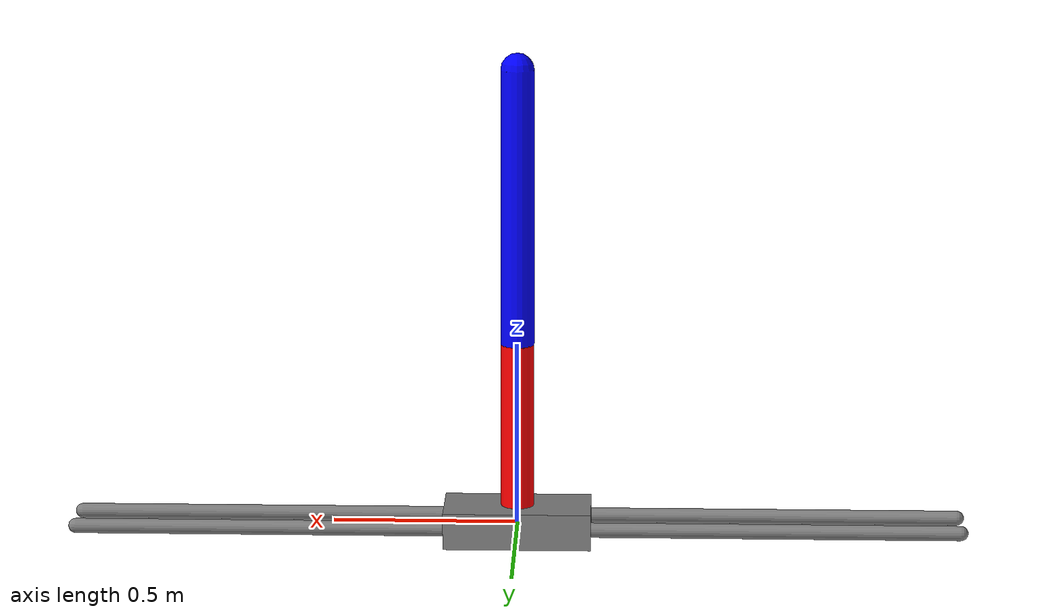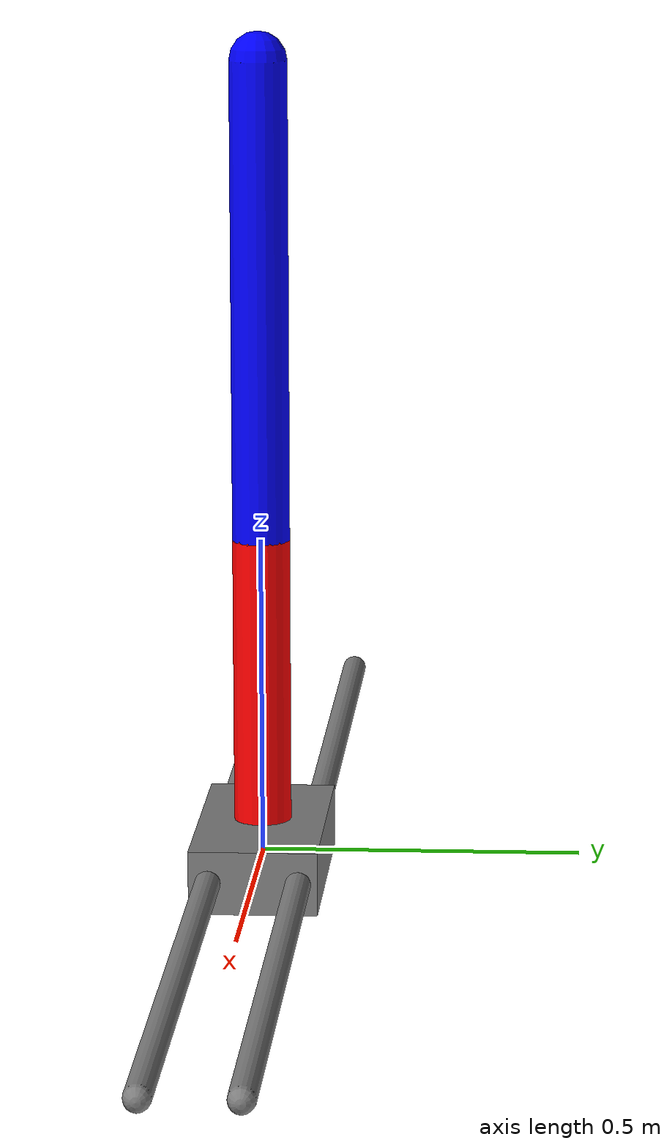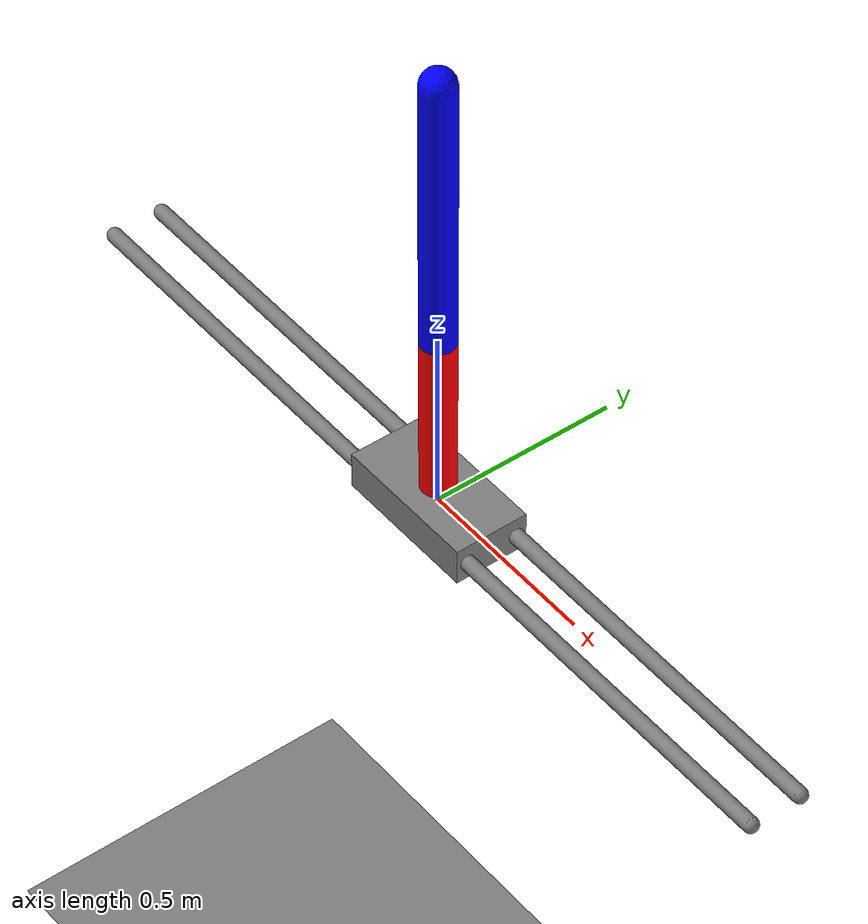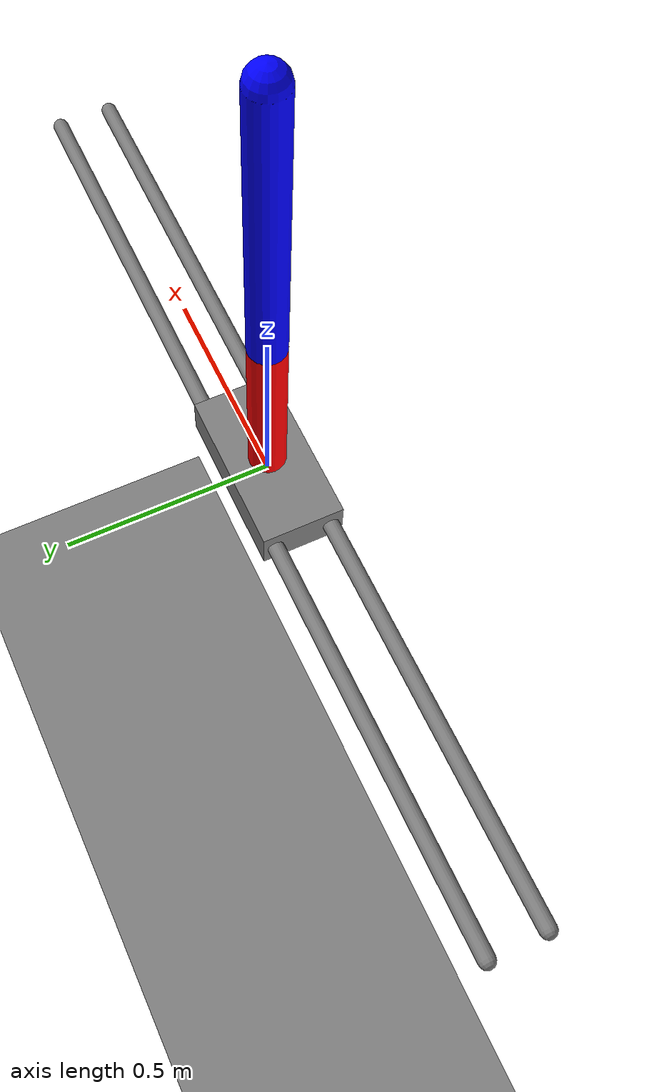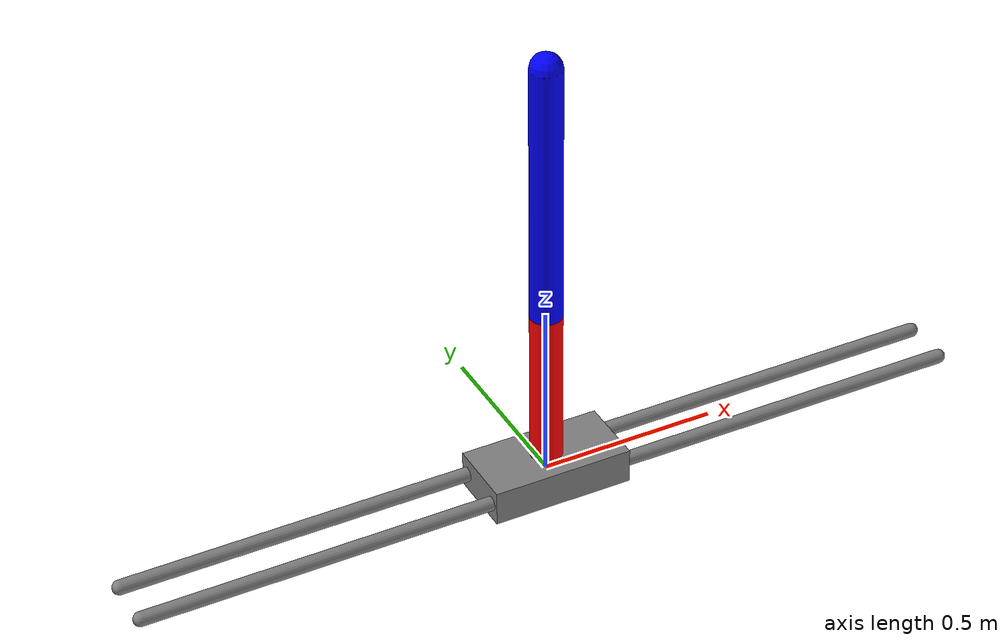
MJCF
<mujoco>
  <compiler coordinate="local" />
  <option gravity="0 0 -9.81" timestep="0.005" />
  <option impratio="1" magnetic="0 0 0" wind="0 -0.5 0" density="0" viscosity="0" o_margin="0" o_solref="0.02 1" o_solimp="0.9 0.95 0.001 0.5 2" integrator="Euler" cone="pyramidal" jacobian="auto" solver="Newton" iterations="100" tolerance="1E-08" noslip_iterations="0" noslip_tolerance="1E-06" mpr_iterations="50" mpr_tolerance="1E-06">
    <flag constraint="enable" equality="enable" frictionloss="enable" limit="enable" contact="enable" passive="enable" gravity="enable" clampctrl="enable" warmstart="enable" filterparent="enable" actuation="enable" refsafe="enable" override="disable" energy="disable" fwdinv="disable" multiccd="disable" />
  </option>
  <worldbody>
    <light name="light" mode="fixed" pos="0 -0.5 3" dir="0 0.5 -3" />
    <camera name="main_camera" mode="fixed" pos="0 -3 1.5" quat="0.8192 0.5736 0 0" />
    <geom density="1000" type="plane" size="4 4 1" pos="0 0 -2.5" quat="-1 0 0 0" priority="0" contype="0" conaffinity="1" group="0" condim="3" solmix="1" solref="0.02 1" solimp="0.9 0.95 0.001" margin="0" gap="0" friction="1 0.1 0.1" fluidshape="none" fluidcoef="5 0.25 1.5 1 1" name="floor_0" />
    <body pos="0 0 0" quat="-1 0 0 0" gravcomp="0" name="cart_1">
      <joint type="slide" pos="0 0 0" axis="1 0 0" ref="0" armature="0" springref="0" springdamper="0 0" damping="0.05" stiffness="0" solreflimit="0.08 1" solimplimit="0.9 0.95 0.001 0.5 2" solreffriction="0.02 1" solimpfriction="0.9 0.95 0.001 0.5 2" frictionloss="0" limited="true" margin="0" range="-1 1" name="slider_2" />
      <geom mass="1.5" type="box" size="0.2 0.1 0.05" pos="0 0 0" quat="-1 0 0 0" priority="0" contype="0" conaffinity="1" group="0" condim="3" solmix="1" solref="0.02 1" solimp="0.9 0.95 0.001" margin="0" gap="0" friction="1 0.1 0.1" fluidshape="none" fluidcoef="5 0.25 1.5 1 1" name="cart_3" />
      <body pos="0 0 0" quat="1 0 0 0" gravcomp="0" name="pole_5">
        <joint type="hinge" pos="0 0 0" axis="-1.192093E-07 1 0" ref="0" armature="0" springref="0" springdamper="0 0" damping="0.05" stiffness="0" solreflimit="0.08 1" solimplimit="0.9 0.95 0.001 0.5 2" solreffriction="0.02 1" solimpfriction="0.9 0.95 0.001 0.5 2" frictionloss="0" limited="false" margin="0" range="0 0" name="hinge_6" />
        <geom mass="0.5" type="capsule" size="0.045 0.25" pos="0 0 0.25" quat="0 1 0 0" rgba="1 0 0 1" priority="0" contype="0" conaffinity="1" group="0" condim="3" solmix="1" solref="0.02 1" solimp="0.9 0.95 0.001" margin="0" gap="0" friction="1 0.1 0.1" fluidshape="none" fluidcoef="5 0.25 1.5 1 1" name="cpole_7" />
        <body pos="0 0 0.5" quat="-1 0 0 0" gravcomp="0" name="tipBody_9" />
        <body pos="0 0 0.5" quat="-1 0 0 0" gravcomp="0" name="extend pole_10">
          <joint type="hinge" pos="0 0 0" axis="-1.192093E-07 1 0" ref="0" armature="0" springref="0" springdamper="0 0" damping="0.05" stiffness="0" solreflimit="0.08 1" solimplimit="0.9 0.95 0.001 0.5 2" solreffriction="0.02 1" solimpfriction="0.9 0.95 0.001 0.5 2" frictionloss="0" limited="false" margin="0" range="0 0" name="hinge_11" />
          <geom mass="0.75" type="capsule" size="0.045 0.375" pos="0 0 0.375" quat="0 1 0 0" rgba="0 0 1 1" priority="0" contype="0" conaffinity="1" group="0" condim="3" solmix="1" solref="0.02 1" solimp="0.9 0.95 0.001" margin="0" gap="0" friction="1 0.1 0.1" fluidshape="none" fluidcoef="5 0.25 1.5 1 1" name="cpole_12" />
          <site type="sphere" size="0.01" pos="0.001 0 0.75" quat="-1 0 0 0" name="tip_13" />
          <body pos="0 0 0.75" quat="-1 0 0 0" gravcomp="0" name="tipBody_14" />
        </body>
      </body>
    </body>
    <geom density="1000" type="capsule" size="0.02000001 1.2" pos="0 -0.07 0" quat="0.7071068 0 0.7071068 0" priority="0" contype="0" conaffinity="1" group="0" condim="3" solmix="1" solref="0.02 1" solimp="0.9 0.95 0.001" margin="0" gap="0" friction="1 0.1 0.1" fluidshape="none" fluidcoef="5 0.25 1.5 1 1" name="rail2_15" />
    <geom density="1000" type="capsule" size="0.02000001 1.2" pos="0 0.07 0" quat="0.7071068 0 0.7071068 0" priority="0" contype="0" conaffinity="1" group="0" condim="3" solmix="1" solref="0.02 1" solimp="0.9 0.95 0.001" margin="0" gap="0" friction="1 0.1 0.1" fluidshape="none" fluidcoef="5 0.25 1.5 1 1" name="rail1_16" />

  </worldbody>
  <actuator>
    <general joint="slider_2" ctrllimited="true" forcelimited="false" ctrlrange="-10 10" forcerange="0 0" lengthrange="0 0" gear="50 0 0 0 0 0" dyntype="none" gaintype="fixed" biastype="none" dynprm="1 0 0" gainprm="1 0 0" biasprm="0 0 0" name="slide_17" />
  </actuator>
</mujoco>
